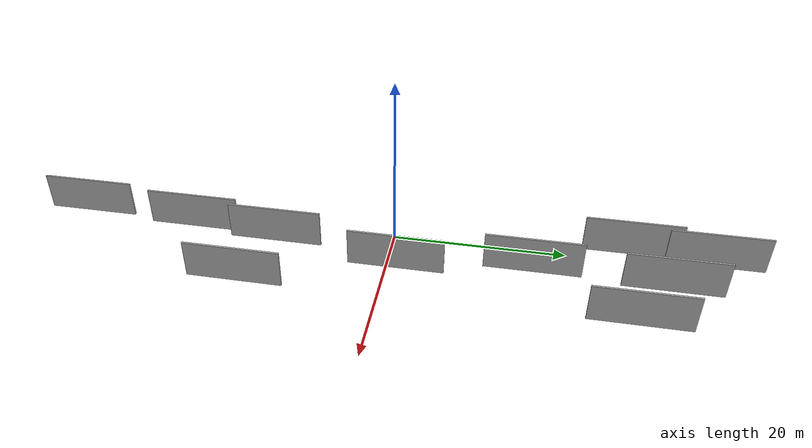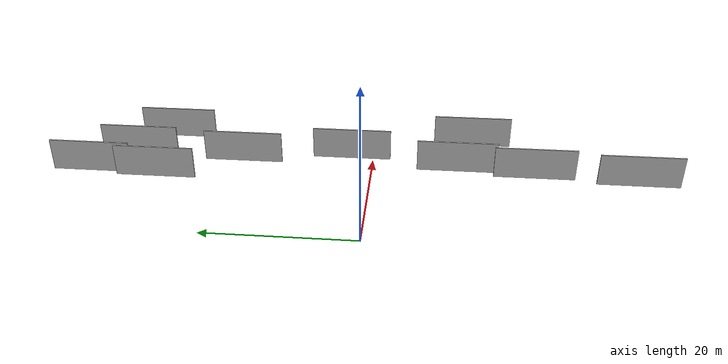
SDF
<sdf version="1.6">
 <world name="default">
  <scene>
   <sky><clouds><speed>12</speed></clouds></sky>
   <ambient>0.4 0.4 0.4 1</ambient>
   <background>0.7 0.7 0.7 1</background>
   <shadows>1</shadows>
  </scene>
  <gravity>0 0 -9.8066</gravity>
  <magnetic_field>6e-06 2.3e-05 -4.2e-05</magnetic_field>
  <physics default="0" name="default_physics" type="ode">
   <ode>
    <solver>
     <type>quick</type>
     <iters>10</iters>
     <sor>1.0</sor>
     <use_dynamic_moi_rescaling>0</use_dynamic_moi_rescaling>
    </solver>
    <constraints>
     <cfm>0</cfm>
     <erp>0.2</erp>
     <contact_max_correcting_vel>100</contact_max_correcting_vel>
     <contact_surface_layer>0.001</contact_surface_layer>
    </constraints>
   </ode>
   <max_step_size>0.004</max_step_size>
   <real_time_factor>1</real_time_factor>
   <real_time_update_rate>250</real_time_update_rate>
  </physics>
  <light name="sun" type="directional">
   <pose>0 0 10 0 0 0</pose>
   <diffuse>0.8 0.8 0.8 1</diffuse>
   <specular>0.2 0.2 0.2 1</specular>
   <attenuation>
    <range>1000</range>
    <constant>0.9</constant>
    <linear>0.01</linear>
    <quadratic>0.001</quadratic>
   </attenuation>
   <direction>-0.5 0.1 -0.9</direction>
  </light>
  <model name="grey_wall_1">
   <static>1</static>
   <pose>10.4056 29.8531 5.0 0.000000 0.000000 1.570796</pose>
   <link name="link">
    <pose>0 0 2.00 0 0 0</pose>
    <collision name="collision"><geometry><box><size>10.00 0.2 4.00</size></box></geometry></collision>
    <visual name="visual">
     <cast_shadows>0</cast_shadows>
     <geometry><box><size>10.00 0.2 4.00</size></box></geometry>
     <material>
      <script>
       <uri>model://HANNAS_wall/materials/scripts</uri>
       <uri>model://HANNAS_wall/materials/textures</uri>
       <name>vrc/HANNAS_wall</name>
      </script>
     </material>
    </visual>
   </link>
  </model>
  <model name="grey_wall_2">
   <static>1</static>
   <pose>5.6265 34.5168 5.0 0.000000 0.000000 1.570796</pose>
   <link name="link">
    <pose>0 0 2.00 0 0 0</pose>
    <collision name="collision"><geometry><box><size>10.00 0.2 4.00</size></box></geometry></collision>
    <visual name="visual">
     <cast_shadows>0</cast_shadows>
     <geometry><box><size>10.00 0.2 4.00</size></box></geometry>
     <material>
      <script>
       <uri>model://HANNAS_wall/materials/scripts</uri>
       <uri>model://HANNAS_wall/materials/textures</uri>
       <name>vrc/HANNAS_wall</name>
      </script>
     </material>
    </visual>
   </link>
  </model>
  <model name="grey_wall_3">
   <static>1</static>
   <pose>16.6689 -13.5036 5.0 0.000000 0.000000 1.570796</pose>
   <link name="link">
    <pose>0 0 2.00 0 0 0</pose>
    <collision name="collision"><geometry><box><size>10.00 0.2 4.00</size></box></geometry></collision>
    <visual name="visual">
     <cast_shadows>0</cast_shadows>
     <geometry><box><size>10.00 0.2 4.00</size></box></geometry>
     <material>
      <script>
       <uri>model://HANNAS_wall/materials/scripts</uri>
       <uri>model://HANNAS_wall/materials/textures</uri>
       <name>vrc/HANNAS_wall</name>
      </script>
     </material>
    </visual>
   </link>
  </model>
  <model name="grey_wall_4">
   <static>1</static>
   <pose>11.7319 2.1649 5.0 0.000000 0.000000 1.570796</pose>
   <link name="link">
    <pose>0 0 2.00 0 0 0</pose>
    <collision name="collision"><geometry><box><size>10.00 0.2 4.00</size></box></geometry></collision>
    <visual name="visual">
     <cast_shadows>0</cast_shadows>
     <geometry><box><size>10.00 0.2 4.00</size></box></geometry>
     <material>
      <script>
       <uri>model://HANNAS_wall/materials/scripts</uri>
       <uri>model://HANNAS_wall/materials/textures</uri>
       <name>vrc/HANNAS_wall</name>
      </script>
     </material>
    </visual>
   </link>
  </model>
  <model name="grey_wall_5">
   <static>1</static>
   <pose>9.4271 -11.3147 5.0 0.000000 0.000000 1.570796</pose>
   <link name="link">
    <pose>0 0 2.00 0 0 0</pose>
    <collision name="collision"><geometry><box><size>10.00 0.2 4.00</size></box></geometry></collision>
    <visual name="visual">
     <cast_shadows>0</cast_shadows>
     <geometry><box><size>10.00 0.2 4.00</size></box></geometry>
     <material>
      <script>
       <uri>model://HANNAS_wall/materials/scripts</uri>
       <uri>model://HANNAS_wall/materials/textures</uri>
       <name>vrc/HANNAS_wall</name>
      </script>
     </material>
    </visual>
   </link>
  </model>
  <model name="grey_wall_6">
   <static>1</static>
   <pose>7.6798 -33.3444 5.0 0.000000 0.000000 1.570796</pose>
   <link name="link">
    <pose>0 0 2.00 0 0 0</pose>
    <collision name="collision"><geometry><box><size>10.00 0.2 4.00</size></box></geometry></collision>
    <visual name="visual">
     <cast_shadows>0</cast_shadows>
     <geometry><box><size>10.00 0.2 4.00</size></box></geometry>
     <material>
      <script>
       <uri>model://HANNAS_wall/materials/scripts</uri>
       <uri>model://HANNAS_wall/materials/textures</uri>
       <name>vrc/HANNAS_wall</name>
      </script>
     </material>
    </visual>
   </link>
  </model>
  <model name="grey_wall_7">
   <static>1</static>
   <pose>8.4656 -20.8525 5.0 0.000000 0.000000 1.570796</pose>
   <link name="link">
    <pose>0 0 2.00 0 0 0</pose>
    <collision name="collision"><geometry><box><size>10.00 0.2 4.00</size></box></geometry></collision>
    <visual name="visual">
     <cast_shadows>0</cast_shadows>
     <geometry><box><size>10.00 0.2 4.00</size></box></geometry>
     <material>
      <script>
       <uri>model://HANNAS_wall/materials/scripts</uri>
       <uri>model://HANNAS_wall/materials/textures</uri>
       <name>vrc/HANNAS_wall</name>
      </script>
     </material>
    </visual>
   </link>
  </model>
  <model name="grey_wall_8">
   <static>1</static>
   <pose>9.8078 16.0075 5.0 0.000000 0.000000 1.570796</pose>
   <link name="link">
    <pose>0 0 2.00 0 0 0</pose>
    <collision name="collision"><geometry><box><size>10.00 0.2 4.00</size></box></geometry></collision>
    <visual name="visual">
     <cast_shadows>0</cast_shadows>
     <geometry><box><size>10.00 0.2 4.00</size></box></geometry>
     <material>
      <script>
       <uri>model://HANNAS_wall/materials/scripts</uri>
       <uri>model://HANNAS_wall/materials/textures</uri>
       <name>vrc/HANNAS_wall</name>
      </script>
     </material>
    </visual>
   </link>
  </model>
  <model name="grey_wall_9">
   <static>1</static>
   <pose>4.9218 26.1174 5.0 0.000000 0.000000 1.570796</pose>
   <link name="link">
    <pose>0 0 2.00 0 0 0</pose>
    <collision name="collision"><geometry><box><size>10.00 0.2 4.00</size></box></geometry></collision>
    <visual name="visual">
     <cast_shadows>0</cast_shadows>
     <geometry><box><size>10.00 0.2 4.00</size></box></geometry>
     <material>
      <script>
       <uri>model://HANNAS_wall/materials/scripts</uri>
       <uri>model://HANNAS_wall/materials/textures</uri>
       <name>vrc/HANNAS_wall</name>
      </script>
     </material>
    </visual>
   </link>
  </model>
  <model name="grey_wall_10">
   <static>1</static>
   <pose>16.0207 26.2984 5.0 0.000000 0.000000 1.570796</pose>
   <link name="link">
    <pose>0 0 2.00 0 0 0</pose>
    <collision name="collision"><geometry><box><size>10.00 0.2 4.00</size></box></geometry></collision>
    <visual name="visual">
     <cast_shadows>0</cast_shadows>
     <geometry><box><size>10.00 0.2 4.00</size></box></geometry>
     <material>
      <script>
       <uri>model://HANNAS_wall/materials/scripts</uri>
       <uri>model://HANNAS_wall/materials/textures</uri>
       <name>vrc/HANNAS_wall</name>
      </script>
     </material>
    </visual>
   </link>
  </model>
 </world>
</sdf>
